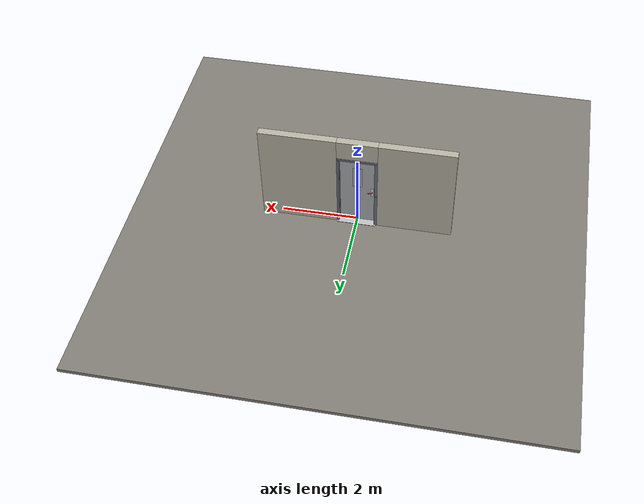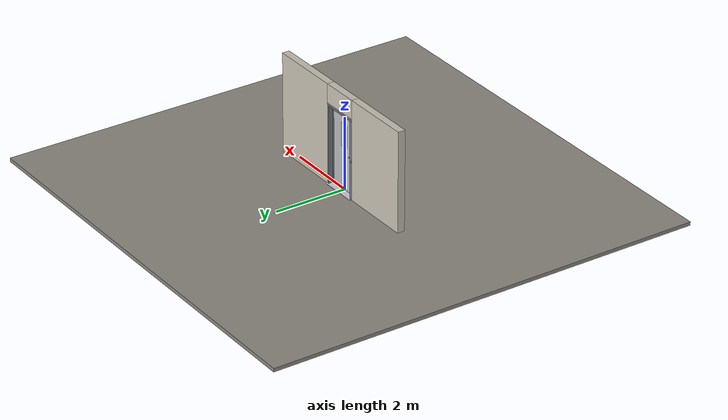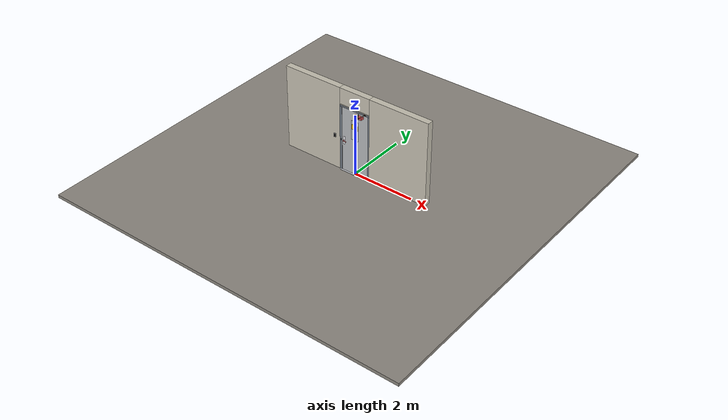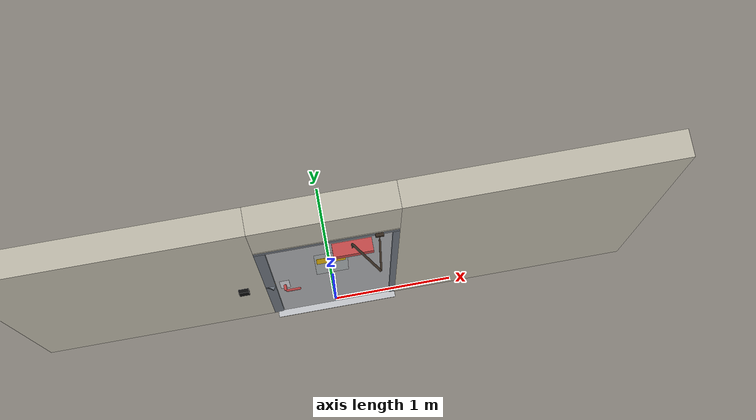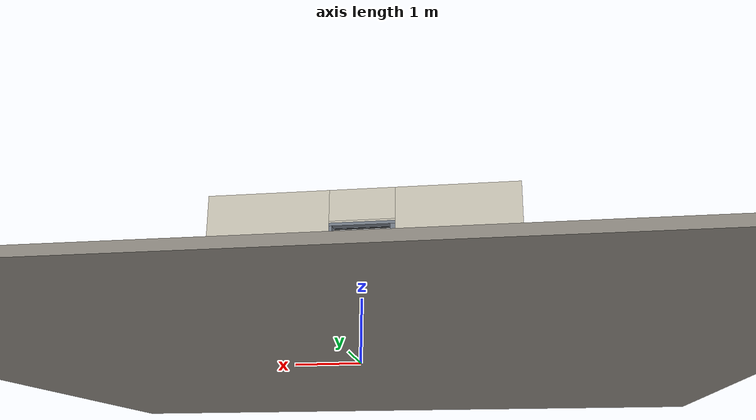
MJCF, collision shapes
<?xml version="1.0" ?>
<mujoco model="db0484_swing_single_full">
  <compiler angle="radian" meshdir="../../hardware" texturedir="../../textures" autolimits="true" inertiafromgeom="false"/>
  <option timestep="0.002" integrator="implicitfast" cone="elliptic" impratio="10" noslip_iterations="3">
    <flag multiccd="enable"/>
  </option>
  <size memory="16M"/>
  <default>
    <geom condim="4" solref="0.005 1" solimp="0.95 0.99 0.001"/>
    <joint solreflimit="0.005 1" solimplimit="0.95 0.99 0.001"/>
    <tendon solreflimit="0.005 1"/>
    <equality solref="0.002 1"/>
  </default>
  <visual>
    <headlight ambient="0.4 0.4 0.4" diffuse="0.7 0.7 0.7" specular="0.2 0.2 0.2"/>
    <quality shadowsize="4096"/>
    <map znear="0.01" zfar="60"/>
  </visual>
  <asset>
    <mesh name="card_reader_38c0bdb077" file="card_reader_38c0bdb077.obj"/>
    <mesh name="closer_body_fdc4667657" file="closer_body_fdc4667657.obj"/>
    <mesh name="hinge_e22b26c0c1" file="hinge_e22b26c0c1.obj"/>
    <mesh name="hinge_jamb_e1d088f8dc" file="hinge_jamb_e1d088f8dc.obj"/>
    <mesh name="lever_56c65af20a" file="lever_56c65af20a.obj"/>
    <material name="mat_floor" rgba="0.55 0.53 0.5 1" specular="0.2" shininess="0.15" reflectance="0"/>
    <material name="mat_wall" rgba="0.78 0.76 0.7 1" specular="0.2" shininess="0.1" reflectance="0"/>
    <material name="mat_leaf" rgba="0.72 0.73 0.74 1" specular="0.23" shininess="0.36" reflectance="0.02"/>
    <material name="mat_glass" rgba="0.8 0.85 0.85 0.35" specular="0.2" shininess="0.9" reflectance="0.1"/>
    <material name="mat_hinge" rgba="0.65 0.66 0.68 1" specular="0.74" shininess="0.5" reflectance="0.36"/>
    <material name="mat_op_chrome" rgba="0.9 0.9 0.92 1" specular="0.8" shininess="0.9" reflectance="0.4"/>
    <material name="mat_trim" rgba="0.85 0.66 0.3 1" specular="0.8" shininess="0.75" reflectance="0.4"/>
    <material name="mat_reader" rgba="0.05 0.05 0.05 1" specular="0.38" shininess="0.3" reflectance="0.12"/>
    <material name="mat_bolt" rgba="0.85 0.66 0.3 1" specular="0.8" shininess="0.75" reflectance="0.4"/>
    <material name="mat_frame" rgba="0.45 0.48 0.52 1" specular="0.32" shininess="0.6" reflectance="0.08"/>
    <material name="mat_seal" rgba="0.1 0.1 0.1 1" specular="0.2" shininess="0.1" reflectance="0"/>
    <material name="mat_threshold" rgba="0.8 0.81 0.83 1" specular="0.8" shininess="0.6" reflectance="0.4"/>
    <material name="mat_closer" rgba="0.22 0.17 0.13 1" specular="0.8" shininess="0.6" reflectance="0.4"/>
    <material name="mat_placard" rgba="0.95 0.75 0.05 1" specular="0.2" shininess="0.5" reflectance="0"/>
    <material name="mat_wallreader" rgba="0.05 0.05 0.05 1" specular="0.38" shininess="0.3" reflectance="0.12"/>
    <texture name="skybox" type="skybox" builtin="gradient" rgb1="0.6 0.7 0.85" rgb2="0.9 0.92 0.95" width="256" height="256"/>
  </asset>
  <worldbody>
    <light name="sun" pos="1.5 -2.5 4" dir="-0.3 0.5 -0.8" directional="true" diffuse="0.8 0.8 0.8" specular="0.3 0.3 0.3" castshadow="true"/>
    <light name="fill" pos="-1.5 2.5 3" dir="0.3 -0.5 -0.7" directional="true" diffuse="0.35 0.35 0.4" castshadow="false"/>
    <camera name="robot_view" pos="0 -2.566812 1.812087" xyaxes="1 0 0 0 0.26963 0.962964" fovy="52"/>
    <camera name="far_view" pos="0 2.708813 1.812087" xyaxes="-1 0 0 0 -0.26963 0.962964" fovy="52"/>
    <camera name="iso" pos="-2.004737 -2.144762 2.234138" xyaxes="0.741536 -0.670913 0 0.242917 0.268487 0.932151" fovy="46"/>
    <camera name="detail_handle" pos="-0.1105 -0.877 1.32" xyaxes="0.97561 0.219512 0 -0.070934 0.315262 0.94635" fovy="38"/>
    <geom name="floor" type="box" size="6 6 0.05" pos="0 0 -0.05" material="mat_floor" group="0" contype="1" conaffinity="1" friction="0.8 0.005 0.0001" density="2400"/>
    <geom name="wall_left" type="box" size="0.97975 0.1 1.3735" pos="-1.52025 0.071 1.3735" material="mat_wall" group="0" contype="1" conaffinity="1" friction="0.6 0.005 0.0001" density="800"/>
    <geom name="wall_right" type="box" size="0.99475 0.1 1.3735" pos="1.50525 0.071 1.3735" material="mat_wall" group="0" contype="1" conaffinity="1" friction="0.6 0.005 0.0001" density="800"/>
    <geom name="wall_header" type="box" size="0.5255 0.1 0.26" pos="-0.015 0.071 2.487" material="mat_wall" group="0" contype="1" conaffinity="1" friction="0.6 0.005 0.0001" density="800"/>
    <geom name="hinge_0_jamb" type="mesh" mesh="hinge_jamb_e1d088f8dc" pos="0.4575 -0.029 0.259" quat="0 0 1 0" material="mat_hinge" group="1" contype="0" conaffinity="0" density="7850"/>
    <geom name="hinge_1_jamb" type="mesh" mesh="hinge_jamb_e1d088f8dc" pos="0.4575 -0.029 1.076" quat="0 0 1 0" material="mat_hinge" group="1" contype="0" conaffinity="0" density="7850"/>
    <geom name="hinge_2_jamb" type="mesh" mesh="hinge_jamb_e1d088f8dc" pos="0.4575 -0.029 1.963" quat="0 0 1 0" material="mat_hinge" group="1" contype="0" conaffinity="0" density="7850"/>
    <geom name="jamb_hinge" type="box" size="0.025 0.1 1.0735" pos="0.4855 0.071 1.0735" material="mat_frame" group="0" contype="1" conaffinity="1" friction="0.6 0.005 0.0001" density="300"/>
    <geom name="strike_1040_wall_n" type="box" size="0.04 0.08075 0.0183" pos="-0.5005 0.09025 1.04" material="mat_frame" group="0" contype="1" conaffinity="1" friction="0.6 0.005 0.0001" density="300"/>
    <geom name="strike_1040_wall_p" type="box" size="0.04 0.008 0.0183" pos="-0.5005 -0.0175 1.04" material="mat_frame" group="0" contype="1" conaffinity="1" friction="0.6 0.005 0.0001" density="300"/>
    <geom name="strike_1040_ramp" type="box" size="0.04 0.018028 0.0183" pos="-0.503782 -0.018312 1.04" quat="0.957092 0 0 -0.289784" material="mat_frame" group="0" contype="1" conaffinity="1" friction="0.12 0.005 0.0001" density="300"/>
    <geom name="strike_1040_back" type="box" size="0.0285 0.0095 0.0183" pos="-0.512 0 1.04" material="mat_frame" group="0" contype="1" conaffinity="1" friction="0.6 0.005 0.0001" density="300"/>
    <geom name="jamb_strike_0" type="box" size="0.04 0.1 0.51085" pos="-0.5005 0.071 0.51085" material="mat_frame" group="0" contype="1" conaffinity="1" friction="0.6 0.005 0.0001" density="300"/>
    <geom name="jamb_strike_1" type="box" size="0.04 0.1 0.54435" pos="-0.5005 0.071 1.60265" material="mat_frame" group="0" contype="1" conaffinity="1" friction="0.6 0.005 0.0001" density="300"/>
    <geom name="jamb_head" type="box" size="0.5255 0.1 0.025" pos="-0.015 0.071 2.172" material="mat_frame" group="0" contype="1" conaffinity="1" friction="0.6 0.005 0.0001" density="300"/>
    <geom name="head_stud" type="box" size="0.5255 0.1 0.015" pos="-0.015 0.071 2.212" material="mat_wall" group="0" contype="1" conaffinity="1" friction="0.6 0.005 0.0001" density="500"/>
    <geom name="stop_hinge" type="box" size="0.0055 0.016 1.0735" pos="0.455 0.0385 1.0735" material="mat_frame" group="0" contype="1" conaffinity="1" friction="0.6 0.005 0.0001" density="300"/>
    <geom name="stop_strike" type="box" size="0.0055 0.016 1.0735" pos="-0.455 0.0385 1.0735" material="mat_frame" group="0" contype="1" conaffinity="1" friction="0.6 0.005 0.0001" density="300"/>
    <geom name="stop_head" type="box" size="0.4605 0.016 0.0055" pos="0 0.0385 2.1415" material="mat_frame" group="0" contype="1" conaffinity="1" friction="0.6 0.005 0.0001" density="300"/>
    <geom name="seal_hinge" type="box" size="0.004 0.004 1.0735" pos="0.4575 0.026 1.0735" material="mat_seal" group="1" contype="0" conaffinity="0" density="1100"/>
    <geom name="seal_strike" type="box" size="0.004 0.004 1.0735" pos="-0.4575 0.026 1.0735" material="mat_seal" group="1" contype="0" conaffinity="0" density="1100"/>
    <geom name="seal_head" type="box" size="0.4405 0.004 0.008" pos="0 0.026 2.135" material="mat_seal" group="1" contype="0" conaffinity="0" density="1100"/>
    <geom name="threshold" type="box" size="0.5105 0.15 0.004" pos="0 0.071 0.004" material="mat_threshold" group="0" contype="1" conaffinity="1" friction="0.6 0.005 0.0001" density="2700"/>
    <geom name="closer_bracket" type="box" size="0.03 0.012 0.014" pos="0.3605 -0.041 2.177" material="mat_closer" group="1" contype="0" conaffinity="0" density="2700"/>
    <geom name="wall_reader" type="box" size="0.04 0.015 0.06" pos="-0.7105 -0.044 1.1" material="mat_wallreader" group="0" contype="1" conaffinity="1" friction="0.6 0.005 0.0001" density="1000"/>
    <site name="approach_point" pos="0 -1.5 0" quat="1 0 0 0" size="0.05" rgba="0.2 0.9 0.2 0.5" group="4"/>
    <site name="goal_point" pos="0 1.5 0" quat="1 0 0 0" size="0.05" rgba="0.2 0.9 0.2 0.5" group="4"/>
    <site name="door_plane_center" pos="0 0 1.0735" quat="1 0 0 0" size="0.02" rgba="0.2 0.9 0.2 0.5" group="4"/>
    <body name="leaf" pos="0.4605 0 0">
      <inertial pos="-0.422675 -0.018312 1.318221" mass="52.418397" quat="0.519772 -0.515985 -0.469343 -0.493269" diaginertia="3.202334933 24.119075749 27.228309305"/>
      <joint name="leaf_hinge" type="hinge" axis="0 0 1" pos="-0.003 -0.029 0" limited="true" range="0 1.745329" solreflimit="0.02 1" damping="12.268966" frictionloss="1.643175" stiffness="13.057072" springref="-1.488848" armature="0.02"/>
      <geom name="leaf_slab" type="box" size="0.457 0.022 1.067" pos="-0.46 0 1.076" material="mat_leaf" group="0" contype="1" conaffinity="1" friction="0.4 0.005 0.0001" density="1"/>
      <geom name="leaf_glass_0" type="box" size="0.125 0.0228 0.3201" pos="-0.46 0 1.5028" material="mat_glass" group="1" contype="0" conaffinity="0" density="1"/>
      <geom name="hinge_0" type="mesh" mesh="hinge_e22b26c0c1" pos="-0.003 -0.029 0.259" quat="0 0 1 0" material="mat_hinge" group="1" contype="0" conaffinity="0" density="7850"/>
      <geom name="hinge_1" type="mesh" mesh="hinge_e22b26c0c1" pos="-0.003 -0.029 1.076" quat="0 0 1 0" material="mat_hinge" group="1" contype="0" conaffinity="0" density="7850"/>
      <geom name="hinge_2" type="mesh" mesh="hinge_e22b26c0c1" pos="-0.003 -0.029 1.963" quat="0 0 1 0" material="mat_hinge" group="1" contype="0" conaffinity="0" density="7850"/>
      <geom name="leaf_handle_escutcheon_n" type="box" size="0.0375 0.0015 0.13" pos="-0.847 -0.0235 1.04" material="mat_op_chrome" group="1" contype="0" conaffinity="0" density="3000"/>
      <geom name="leaf_handle_escutcheon_p" type="box" size="0.0375 0.0015 0.13" pos="-0.847 0.0235 1.04" material="mat_op_chrome" group="1" contype="0" conaffinity="0" density="3000"/>
      <geom name="leaf_handle_reader" type="mesh" mesh="card_reader_38c0bdb077" pos="-0.847 -0.022 1.2" quat="0.707107 0.707107 0 0" material="mat_reader" group="1" contype="0" conaffinity="0" density="2000"/>
      <geom name="leaf_latch_bolt_faceplate" type="box" size="0.0006 0.014 0.0283" pos="-0.9164 0 1.04" material="mat_bolt" group="1" contype="0" conaffinity="0" density="8500"/>
      <geom name="closer_body" type="mesh" mesh="closer_body_fdc4667657" pos="-0.3 -0.022 2.054" quat="0 0 -0.707107 0.707107" material="mat_closer" group="1" contype="0" conaffinity="0" density="2000"/>
      <geom name="closer_body_col" type="box" size="0.145 0.05 0.035" pos="-0.3 -0.072 2.054" material="mat_closer" group="3" contype="1" conaffinity="1" rgba="0.8 0.3 0.3 0.25" friction="0.6 0.005 0.0001" density="2000"/>
      <geom name="closer_pinion_shaft" type="cylinder" size="0.008 0.0615" pos="-0.3 -0.072 2.1155" material="mat_closer" group="1" contype="0" conaffinity="0" density="2700"/>
      <geom name="warning_placard" type="box" size="0.11 0.001 0.08" pos="-0.46 -0.023 1.6095" material="mat_placard" group="2" contype="0" conaffinity="0" density="1000"/>
      <site name="leaf_edge_mid" pos="-0.917 0 1.067" quat="1 0 0 0" size="0.02" rgba="0.2 0.9 0.2 0.5" group="4"/>
      <body name="leaf_handle" pos="-0.847 0 1.04">
        <inertial pos="0.034904 0 0" mass="0.739068" quat="0.707107 0 0 -0.707107" diaginertia="0.001260094 0.003272501 0.004494637"/>
        <joint name="leaf_handle_hinge" type="hinge" axis="0 1 0" limited="true" range="0 0.87" damping="0.231314" frictionloss="0.06" stiffness="1.1" springref="-0.454545" armature="0.01"/>
        <geom name="leaf_handle_spindle" type="cylinder" size="0.006 0.034" pos="0 0 0" quat="0.707107 -0.707107 0 0" material="mat_op_chrome" group="1" contype="0" conaffinity="0" density="7850"/>
        <geom name="leaf_handle_lever_n" type="mesh" mesh="lever_56c65af20a" pos="0 -0.022 0" quat="0 0 -0.707107 0.707107" material="mat_op_chrome" group="1" contype="0" conaffinity="0" density="3000"/>
        <geom name="leaf_handle_lever_col_n" type="capsule" size="0.0095 0.0505" pos="0.06 -0.077 0" quat="0.707107 0 0.707107 0" material="mat_op_chrome" group="3" contype="1" conaffinity="1" rgba="0.8 0.3 0.3 0.25" friction="0.7 0.01 0.0001" density="3000"/>
        <geom name="leaf_handle_hub_col_n" type="cylinder" size="0.012 0.022" pos="0 -0.052 0" quat="0.707107 -0.707107 0 0" material="mat_op_chrome" group="3" contype="1" conaffinity="1" rgba="0.8 0.3 0.3 0.25" friction="0.6 0.005 0.0001" density="3000"/>
        <geom name="leaf_handle_lever_p" type="mesh" mesh="lever_56c65af20a" pos="0 0.022 0" quat="0 0 0.707107 0.707107" material="mat_op_chrome" group="1" contype="0" conaffinity="0" density="3000"/>
        <geom name="leaf_handle_lever_col_p" type="capsule" size="0.0095 0.0505" pos="0.06 0.077 0" quat="0.707107 0 0.707107 0" material="mat_op_chrome" group="3" contype="1" conaffinity="1" rgba="0.8 0.3 0.3 0.25" friction="0.7 0.01 0.0001" density="3000"/>
        <geom name="leaf_handle_hub_col_p" type="cylinder" size="0.012 0.022" pos="0 0.052 0" quat="0.707107 -0.707107 0 0" material="mat_op_chrome" group="3" contype="1" conaffinity="1" rgba="0.8 0.3 0.3 0.25" friction="0.6 0.005 0.0001" density="3000"/>
        <site name="leaf_handle_grip_n" pos="0.096 -0.077 0" quat="1 0 0 0" size="0.012" rgba="0.2 0.9 0.2 0.5" group="4"/>
        <site name="leaf_handle_grip_p" pos="0.096 0.077 0" quat="1 0 0 0" size="0.012" rgba="0.2 0.9 0.2 0.5" group="4"/>
      </body>
      <body name="leaf_latch_bolt" pos="-0.917 0 1.04">
        <inertial pos="0.0055 0 0" mass="0.074627" quat="0.92388 0.382683 0 0" diaginertia="0.000002271 0.000013255 0.000013255"/>
        <joint name="leaf_latch_bolt_slide" type="slide" axis="1 0 0" limited="true" range="0 0.019" damping="2" frictionloss="0.3" stiffness="600" springref="-0.01" armature="0.1"/>
        <geom name="leaf_latch_bolt_capsule" type="capsule" size="0.008 0.0165" pos="0.0055 0 0" quat="0.707107 0 -0.707107 0" material="mat_bolt" group="0" contype="1" conaffinity="1" friction="0.2 0.005 0.0001" density="8500"/>
      </body>
      <body name="closer_arm_main" pos="-0.3 -0.072 2.177" quat="0.890947 0 0 -0.454107">
        <inertial pos="0.14 0 0" mass="0.12096" quat="1 0 0 0" diaginertia="0.000003588 0.00079128 0.000792852"/>
        <joint name="closer_pinion" type="hinge" axis="0 0 1" limited="false" damping="0.01" armature="0.002"/>
        <geom name="closer_arm_main_geom" type="box" size="0.14 0.008 0.005" pos="0.14 0 0" material="mat_closer" group="1" contype="0" conaffinity="0" density="2700"/>
        <body name="closer_arm_fore" pos="0.28 0 0" quat="0.373215 0 0 0.927745">
          <inertial pos="0.128088 0 0" mass="0.076531" quat="1 0 0 0" diaginertia="0.000001771 0.000437665 0.000438201"/>
          <joint name="closer_elbow" type="hinge" axis="0 0 1" limited="false" damping="0.01" armature="0.002"/>
          <geom name="closer_arm_fore_geom" type="box" size="0.1125 0.007 0.004" pos="0.1125 0 0" material="mat_closer" group="1" contype="0" conaffinity="0" density="2700"/>
          <geom name="closer_fore_neck" type="box" size="0.0175 0.003 0.003" pos="0.2425 0 0" material="mat_closer" group="1" contype="0" conaffinity="0" density="2700"/>
          <geom name="closer_fore_pivot" type="cylinder" size="0.005 0.012" pos="0.26 0 0" material="mat_closer" group="1" contype="0" conaffinity="0" density="2700"/>
        </body>
      </body>
    </body>
  </worldbody>
  <tendon>
    <fixed name="leaf_latch_bolt_coupling" limited="true" range="0 10">
      <joint joint="leaf_latch_bolt_slide" coef="1"/>
      <joint joint="leaf_handle_hinge" coef="-0.023457"/>
    </fixed>
  </tendon>
  <equality>
    <connect name="closer_arm_connect" body1="closer_arm_fore" body2="world" anchor="0.26 0 0" active="true"/>
  </equality>
  <contact>
    <exclude body1="closer_arm_main" body2="leaf"/>
    <exclude body1="closer_arm_fore" body2="leaf"/>
    <exclude body1="closer_arm_main" body2="closer_arm_fore"/>
  </contact>
  <sensor>
    <jointpos name="leaf_hinge_pos" joint="leaf_hinge"/>
    <jointvel name="leaf_hinge_vel" joint="leaf_hinge"/>
    <jointpos name="leaf_handle_hinge_pos" joint="leaf_handle_hinge"/>
    <jointvel name="leaf_handle_hinge_vel" joint="leaf_handle_hinge"/>
    <jointpos name="leaf_latch_bolt_slide_pos" joint="leaf_latch_bolt_slide"/>
    <jointvel name="leaf_latch_bolt_slide_vel" joint="leaf_latch_bolt_slide"/>
  </sensor>
</mujoco>
